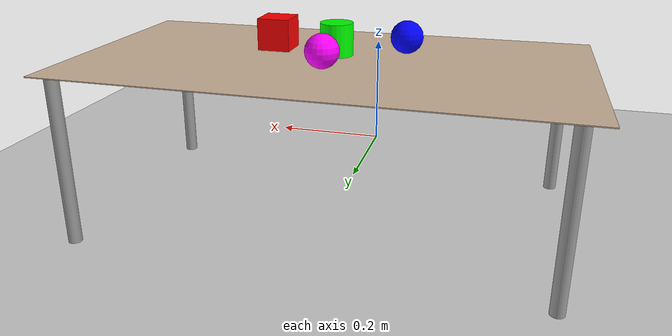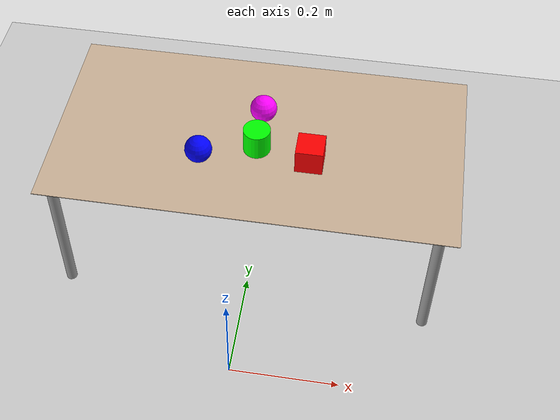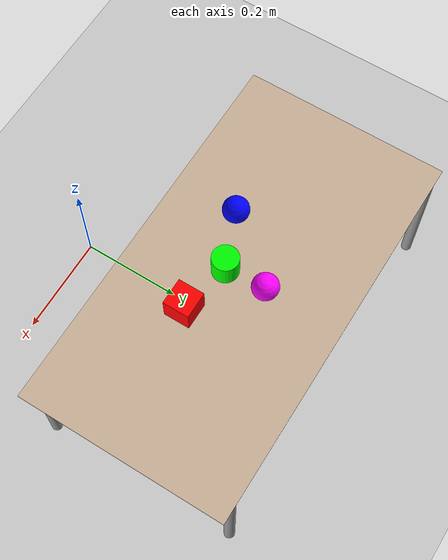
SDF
<?xml version="1.0" ?>

<sdf version="1.7">
  <world name="default">

    <!-- Plugin for simulating physics -->
    <plugin
      filename="gz-sim-physics-system"
      name="gz::sim::systems::Physics">
    </plugin>

    <!-- Plugin for handling user commands -->
    <plugin
      filename="gz-sim-user-commands-system"
      name="gz::sim::systems::UserCommands">
    </plugin>

    <!-- Plugin for broadcasting scene updates -->
    <plugin
      filename="gz-sim-scene-broadcaster-system"
      name="gz::sim::systems::SceneBroadcaster">
    </plugin>

    <!-- Plugin for sensor handling -->
    <plugin
      filename="gz-sim-sensors-system"
      name="gz::sim::systems::Sensors">
      <render_engine>ogre2</render_engine>
    </plugin>

    <!-- To add realistic gravity, do: 0.0 0.0 -9.8, otherwise do 0.0 0.0 0.0 -->
    <gravity>0.0 0.0 -9.8</gravity>

    <!-- Include a model of the Sun from an external URI -->
    <include>
      <uri>
        https://fuel.gazebosim.org/1.0/OpenRobotics/models/Sun
      </uri>
    </include>

    <!-- Include a model of the Ground Plane from an external URI -->
    <include>
      <uri>
        https://fuel.gazebosim.org/1.0/OpenRobotics/models/Ground Plane
      </uri>
    </include>

    <!-- Include the cylinder model -->

    <!--  Include the other objects -->

   <include>
   <uri>
      model://small_table
  </uri>
    <pose>0.0 0.35 0.0 0 0 0</pose>
  </include>

  <model name='red_cube'>
      <pose>0.1 0.3 0.275 0 0 0</pose> <link name='link'>
        <inertial>
          <mass>0.1</mass>
          <inertia>
            <ixx>0.000083</ixx> <ixy>0</ixy> <ixz>0</ixz>
            <iyy>0.000083</iyy> <iyz>0</iyz> <izz>0.000083</izz>
          </inertia>
        </inertial>
        <collision name='collision'>
          <geometry>
            <box>
              <size>0.05 0.05 0.05</size> </box>
          </geometry>
        </collision>
        <visual name='visual'>
          <geometry>
            <box>
              <size>0.05 0.05 0.05</size>
            </box>
          </geometry>
          <material>
            <ambient>1.0 0.0 0.0 1.0</ambient> <diffuse>1.0 0.0 0.0 1.0</diffuse>
          </material>
        </visual>
      </link>
    </model>

    <model name='blue_sphere'>
      <pose>-0.1 0.28 0.275 0 0 0</pose> <link name='link'>
        <inertial>
          <mass>0.1</mass>
          <inertia>
            <ixx>0.000083</ixx> <ixy>0</ixy> <ixz>0</ixz>
            <iyy>0.000083</iyy> <iyz>0</iyz> <izz>0.000083</izz>
          </inertia>
        </inertial>
        <collision name='collision'>
          <geometry>
            <sphere>
              <radius>0.025</radius> </sphere>
          </geometry>
        </collision>
        <visual name='visual'>
          <geometry>
            <sphere>
              <radius>0.025</radius>
            </sphere>
          </geometry>
          <material>
            <ambient>0.0 0.0 1.0 1.0</ambient> <diffuse>0.0 0.0 1.0 1.0</diffuse>
          </material>
        </visual>
      </link>
    </model>

    <model name='green_cylinder'>
      <pose>0.0 0.32 0.275 0 0 0</pose> <link name='link'>
        <inertial>
          <mass>0.1</mass>
          <inertia>
            <ixx>0.000083</ixx> <ixy>0</ixy> <ixz>0</ixz>
            <iyy>0.000083</iyy> <iyz>0</iyz> <izz>0.000083</izz>
          </inertia>
        </inertial>
        <collision name='collision'>
          <geometry>
            <cylinder>
              <radius>0.025</radius> <length>0.05</length>  </cylinder>
          </geometry>
        </collision>
        <visual name='visual'>
          <geometry>
            <cylinder>
              <radius>0.025</radius>
              <length>0.05</length>
            </cylinder>
          </geometry>
          <material>
            <ambient>0.0 1.0 0.0 1.0</ambient> <diffuse>0.0 1.0 0.0 1.0</diffuse>
          </material>
        </visual>
      </link>
    </model>

       <model name='red_sphere'>
      <pose>0.0 0.4 0.275 0 0 0</pose> <link name='link'>
        <inertial>
          <mass>0.1</mass>
          <inertia>
            <ixx>0.000083</ixx> <ixy>0</ixy> <ixz>0</ixz>
            <iyy>0.000083</iyy> <iyz>0</iyz> <izz>0.000083</izz>
          </inertia>
        </inertial>
        <collision name='collision'>
          <geometry>
            <sphere>
              <radius>0.025</radius> </sphere>
          </geometry>
        </collision>
        <visual name='visual'>
          <geometry>
            <sphere>
              <radius>0.025</radius>
            </sphere>
          </geometry>
          <material>
            <ambient>1.0 0.0 1.0 1.0</ambient> <diffuse>1.0 0.0 1.0 1.0</diffuse>
          </material>
        </visual>
      </link>
    </model>

    <!-- Define scene properties -->
    <scene>
      <shadows>false</shadows>
    </scene>

  </world>
</sdf>

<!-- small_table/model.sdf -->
<sdf version="1.7">
    <model name="small_table">
        <static>true</static>
        <link name="link">
            <collision name="surface">
                <pose>0 0 0.25 0 0 0</pose>
                <geometry>
                    <box>
                        <size>0.75 0.4 0.0015</size>
                    </box>
                </geometry>
                <surface>
                    <friction>
                        <ode>
                            <mu>0.6</mu>
                            <mu2>0.6</mu2>
                        </ode>
                    </friction>
                </surface>
            </collision>
            <visual name="visual1">
                <pose>0 0 0.25 0 0 0</pose>
                <geometry>
                    <box>
                        <size>0.75 0.4 0.0015</size>
                    </box>
                </geometry>
                <material>
                    <ambient>0.8 0.7 0.6 1.0</ambient>  <diffuse>0.8 0.7 0.6 1.0</diffuse>
                    <specular>0.1 0.1 0.1 1.0</specular> <emissive>0 0 0 1.0</emissive>    </material>
            </visual>
            <collision name="front_left_leg">
                <pose>0.34 0.19 0.125 0 0 0</pose>
                <geometry>
                    <cylinder>
                        <radius>0.01</radius>
                        <length>0.25</length>
                    </cylinder>
                </geometry>
            </collision>
            <visual name="front_left_leg">
                <pose>0.34 0.19 0.125 0 0 0</pose>
                <geometry>
                    <cylinder>
                        <radius>0.01</radius>
                        <length>0.25</length>
                    </cylinder>
                </geometry>
                <material>
                    <diffuse>0.5 0.5 0.5</diffuse>
                    <script>
                        <uri>file://media/materials/scripts/gazebo.material</uri>
                        <name>Gazebo/Grey</name>
                    </script>
                </material>
            </visual>
            <collision name="front_right_leg">
                <pose>0.34 -0.19 0.125 0 0 0</pose>
                <geometry>
                    <cylinder>
                        <radius>0.01</radius>
                        <length>0.25</length>
                    </cylinder>
                </geometry>
            </collision>
            <visual name="front_right_leg">
                <pose>0.34 -0.19 0.125 0 0 0</pose>
                <geometry>
                    <cylinder>
                        <radius>0.01</radius>
                        <length>0.25</length>
                    </cylinder>
                </geometry>
                <material>
                    <diffuse>0.5 0.5 0.5</diffuse>
                    <script>
                        <uri>file://media/materials/scripts/gazebo.material</uri>
                        <name>Gazebo/Grey</name>
                    </script>
                </material>
            </visual>
            <collision name="back_right_leg">
                <pose>-0.34 -0.19 0.125 0 0 0</pose>
                <geometry>
                    <cylinder>
                        <radius>0.01</radius>
                        <length>0.25</length>
                    </cylinder>
                </geometry>
            </collision>
            <visual name="back_right_leg">
                <pose>-0.34 -0.19 0.125 0 0 0</pose>
                <geometry>
                    <cylinder>
                        <radius>0.01</radius>
                        <length>0.25</length>
                    </cylinder>
                </geometry>
                <material>
                    <diffuse>0.5 0.5 0.5</diffuse>
                    <script>
                        <uri>file://media/materials/scripts/gazebo.material</uri>
                        <name>Gazebo/Grey</name>
                    </script>
                </material>
            </visual>
            <collision name="back_left_leg">
                <pose>-0.34 0.19 0.125 0 0 0</pose>
                <geometry>
                    <cylinder>
                        <radius>0.01</radius>
                        <length>0.25</length>
                    </cylinder>
                </geometry>
            </collision>
            <visual name="back_left_leg">
                <pose>-0.34 0.19 0.125 0 0 0</pose>
                <geometry>
                    <cylinder>
                        <radius>0.01</radius>
                        <length>0.25</length>
                    </cylinder>
                </geometry>
                <material>
                    <diffuse>0.5 0.5 0.5</diffuse>
                    <script>
                        <uri>file://media/materials/scripts/gazebo.material</uri>
                        <name>Gazebo/Grey</name>
                    </script>
                </material>
            </visual>
        </link>
    </model>
</sdf>
